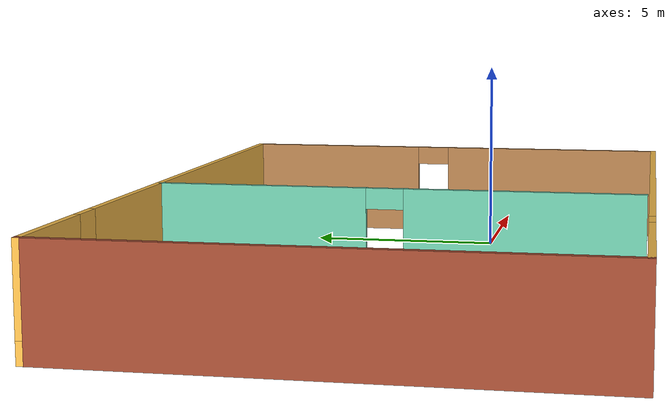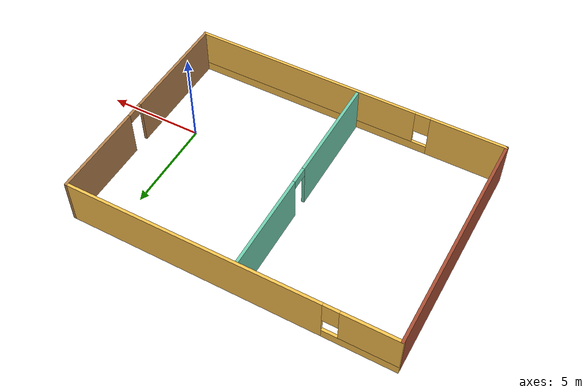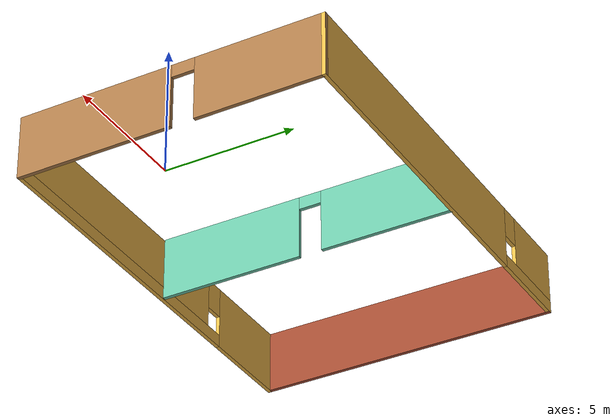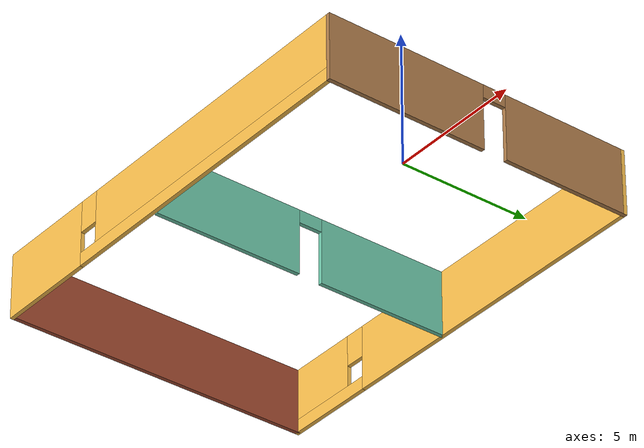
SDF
<?xml version='1.0'?>
<sdf version='1.6'>
  <model name='newbuilding'>
    <pose frame=''>-6.35109 1.40725 0 0 -0 0</pose>
    <link name='Wall_36'>
      <collision name='Wall_36_Collision'>
        <geometry>
          <box>
            <size>12 0.15 2.5</size>
          </box>
        </geometry>
        <pose frame=''>0 0 1.25 0 -0 0</pose>
      </collision>
      <visual name='Wall_36_Visual'>
        <pose frame=''>0 0 1.25 0 -0 0</pose>
        <geometry>
          <box>
            <size>12 0.15 2.5</size>
          </box>
        </geometry>
        <material>
          <script>
            <uri>file://media/materials/scripts/gazebo.material</uri>
            <name>Gazebo/Bricks</name>
          </script>
          <ambient>1 1 1 1</ambient>
        </material>
        <meta>
          <layer>0</layer>
        </meta>
      </visual>
      <pose frame=''>-8.425 0 0 0 0 -1.5708</pose>
    </link>
    <link name='Wall_37'>
      <pose frame=''>0 -5.925 0 0 -0 0</pose>
      <visual name='Wall_37_Visual_0'>
        <pose frame=''>-6.51786 0 1.25 0 -0 0</pose>
        <geometry>
          <box>
            <size>3.96427 0.15 2.5</size>
          </box>
        </geometry>
        <material>
          <script>
            <uri>file://media/materials/scripts/gazebo.material</uri>
            <name>Gazebo/Grey</name>
          </script>
          <ambient>1 0.764706 0.305882 1</ambient>
        </material>
        <meta>
          <layer>0</layer>
        </meta>
      </visual>
      <collision name='Wall_37_Collision_0'>
        <geometry>
          <box>
            <size>3.96427 0.15 2.5</size>
          </box>
        </geometry>
        <pose frame=''>-6.51786 0 1.25 0 -0 0</pose>
      </collision>
      <visual name='Wall_37_Visual_1'>
        <pose frame=''>1.98213 0 0.25 0 -0 0</pose>
        <geometry>
          <box>
            <size>13.0357 0.15 0.5</size>
          </box>
        </geometry>
        <material>
          <script>
            <uri>file://media/materials/scripts/gazebo.material</uri>
            <name>Gazebo/Grey</name>
          </script>
          <ambient>1 0.764706 0.305882 1</ambient>
        </material>
        <meta>
          <layer>0</layer>
        </meta>
      </visual>
      <collision name='Wall_37_Collision_1'>
        <geometry>
          <box>
            <size>13.0357 0.15 0.5</size>
          </box>
        </geometry>
        <pose frame=''>1.98213 0 0.25 0 -0 0</pose>
      </collision>
      <visual name='Wall_37_Visual_2'>
        <pose frame=''>2.38213 0 1.5 0 -0 0</pose>
        <geometry>
          <box>
            <size>12.2357 0.15 2</size>
          </box>
        </geometry>
        <material>
          <script>
            <uri>file://media/materials/scripts/gazebo.material</uri>
            <name>Gazebo/Grey</name>
          </script>
          <ambient>1 0.764706 0.305882 1</ambient>
        </material>
        <meta>
          <layer>0</layer>
        </meta>
      </visual>
      <collision name='Wall_37_Collision_2'>
        <geometry>
          <box>
            <size>12.2357 0.15 2</size>
          </box>
        </geometry>
        <pose frame=''>2.38213 0 1.5 0 -0 0</pose>
      </collision>
      <visual name='Wall_37_Visual_3'>
        <pose frame=''>-4.13573 0 1.9 0 -0 0</pose>
        <geometry>
          <box>
            <size>0.8 0.15 1.2</size>
          </box>
        </geometry>
        <material>
          <script>
            <uri>file://media/materials/scripts/gazebo.material</uri>
            <name>Gazebo/Grey</name>
          </script>
          <ambient>1 0.764706 0.305882 1</ambient>
        </material>
        <meta>
          <layer>0</layer>
        </meta>
      </visual>
      <collision name='Wall_37_Collision_3'>
        <geometry>
          <box>
            <size>0.8 0.15 1.2</size>
          </box>
        </geometry>
        <pose frame=''>-4.13573 0 1.9 0 -0 0</pose>
      </collision>
    </link>
    <link name='Wall_38'>
      <pose frame=''>8.425 0 0 0 -0 1.5708</pose>
      <visual name='Wall_38_Visual_0'>
        <pose frame=''>-2.94223 0 1.25 0 -0 0</pose>
        <geometry>
          <box>
            <size>6.11555 0.15 2.5</size>
          </box>
        </geometry>
        <material>
          <script>
            <uri>file://media/materials/scripts/gazebo.material</uri>
            <name>Gazebo/Wood</name>
          </script>
          <ambient>1 1 1 1</ambient>
        </material>
        <meta>
          <layer>0</layer>
        </meta>
      </visual>
      <collision name='Wall_38_Collision_0'>
        <geometry>
          <box>
            <size>6.11555 0.15 2.5</size>
          </box>
        </geometry>
        <pose frame=''>-2.94223 0 1.25 0 -0 0</pose>
      </collision>
      <visual name='Wall_38_Visual_1'>
        <pose frame=''>3.50778 0 1.25 0 -0 0</pose>
        <geometry>
          <box>
            <size>4.98445 0.15 2.5</size>
          </box>
        </geometry>
        <material>
          <script>
            <uri>file://media/materials/scripts/gazebo.material</uri>
            <name>Gazebo/Wood</name>
          </script>
          <ambient>1 1 1 1</ambient>
        </material>
        <meta>
          <layer>0</layer>
        </meta>
      </visual>
      <collision name='Wall_38_Collision_1'>
        <geometry>
          <box>
            <size>4.98445 0.15 2.5</size>
          </box>
        </geometry>
        <pose frame=''>3.50778 0 1.25 0 -0 0</pose>
      </collision>
      <visual name='Wall_38_Visual_2'>
        <pose frame=''>0.56555 0 2.25 0 -0 0</pose>
        <geometry>
          <box>
            <size>0.9 0.15 0.5</size>
          </box>
        </geometry>
        <material>
          <script>
            <uri>file://media/materials/scripts/gazebo.material</uri>
            <name>Gazebo/Wood</name>
          </script>
          <ambient>1 1 1 1</ambient>
        </material>
        <meta>
          <layer>0</layer>
        </meta>
      </visual>
      <collision name='Wall_38_Collision_2'>
        <geometry>
          <box>
            <size>0.9 0.15 0.5</size>
          </box>
        </geometry>
        <pose frame=''>0.56555 0 2.25 0 -0 0</pose>
      </collision>
    </link>
    <link name='Wall_39'>
      <pose frame=''>0 5.925 0 0 -0 3.14159</pose>
      <visual name='Wall_39_Visual_0'>
        <pose frame=''>-1.84681 0 1.25 0 -0 0</pose>
        <geometry>
          <box>
            <size>13.3064 0.15 2.5</size>
          </box>
        </geometry>
        <material>
          <script>
            <uri>file://media/materials/scripts/gazebo.material</uri>
            <name>Gazebo/Grey</name>
          </script>
          <ambient>1 0.764706 0.305882 1</ambient>
        </material>
        <meta>
          <layer>0</layer>
        </meta>
      </visual>
      <collision name='Wall_39_Collision_0'>
        <geometry>
          <box>
            <size>13.3064 0.15 2.5</size>
          </box>
        </geometry>
        <pose frame=''>-1.84681 0 1.25 0 -0 0</pose>
      </collision>
      <visual name='Wall_39_Visual_1'>
        <pose frame=''>6.65319 0 0.25 0 -0 0</pose>
        <geometry>
          <box>
            <size>3.69361 0.15 0.5</size>
          </box>
        </geometry>
        <material>
          <script>
            <uri>file://media/materials/scripts/gazebo.material</uri>
            <name>Gazebo/Grey</name>
          </script>
          <ambient>1 0.764706 0.305882 1</ambient>
        </material>
        <meta>
          <layer>0</layer>
        </meta>
      </visual>
      <collision name='Wall_39_Collision_1'>
        <geometry>
          <box>
            <size>3.69361 0.15 0.5</size>
          </box>
        </geometry>
        <pose frame=''>6.65319 0 0.25 0 -0 0</pose>
      </collision>
      <visual name='Wall_39_Visual_2'>
        <pose frame=''>7.05319 0 1.5 0 -0 0</pose>
        <geometry>
          <box>
            <size>2.89361 0.15 2</size>
          </box>
        </geometry>
        <material>
          <script>
            <uri>file://media/materials/scripts/gazebo.material</uri>
            <name>Gazebo/Grey</name>
          </script>
          <ambient>1 0.764706 0.305882 1</ambient>
        </material>
        <meta>
          <layer>0</layer>
        </meta>
      </visual>
      <collision name='Wall_39_Collision_2'>
        <geometry>
          <box>
            <size>2.89361 0.15 2</size>
          </box>
        </geometry>
        <pose frame=''>7.05319 0 1.5 0 -0 0</pose>
      </collision>
      <visual name='Wall_39_Visual_3'>
        <pose frame=''>5.20639 0 1.9 0 -0 0</pose>
        <geometry>
          <box>
            <size>0.8 0.15 1.2</size>
          </box>
        </geometry>
        <material>
          <script>
            <uri>file://media/materials/scripts/gazebo.material</uri>
            <name>Gazebo/Grey</name>
          </script>
          <ambient>1 0.764706 0.305882 1</ambient>
        </material>
        <meta>
          <layer>0</layer>
        </meta>
      </visual>
      <collision name='Wall_39_Collision_3'>
        <geometry>
          <box>
            <size>0.8 0.15 1.2</size>
          </box>
        </geometry>
        <pose frame=''>5.20639 0 1.9 0 -0 0</pose>
      </collision>
    </link>
    <link name='Wall_41'>
      <pose frame=''>-0.617853 0.05766 0 0 0 -1.5708</pose>
      <visual name='Wall_41_Visual_0'>
        <pose frame=''>-3.29408 0 1.25 0 -0 0</pose>
        <geometry>
          <box>
            <size>5.16183 0.15 2.5</size>
          </box>
        </geometry>
        <material>
          <script>
            <uri>file://media/materials/scripts/gazebo.material</uri>
            <name>Gazebo/Grey</name>
          </script>
          <ambient>0.435294 0.796078 0.67451 1</ambient>
        </material>
        <meta>
          <layer>0</layer>
        </meta>
      </visual>
      <collision name='Wall_41_Collision_0'>
        <geometry>
          <box>
            <size>5.16183 0.15 2.5</size>
          </box>
        </geometry>
        <pose frame=''>-3.29408 0 1.25 0 -0 0</pose>
      </collision>
      <visual name='Wall_41_Visual_1'>
        <pose frame=''>3.03092 0 1.25 0 -0 0</pose>
        <geometry>
          <box>
            <size>5.68817 0.15 2.5</size>
          </box>
        </geometry>
        <material>
          <script>
            <uri>file://media/materials/scripts/gazebo.material</uri>
            <name>Gazebo/Grey</name>
          </script>
          <ambient>0.435294 0.796078 0.67451 1</ambient>
        </material>
        <meta>
          <layer>0</layer>
        </meta>
      </visual>
      <collision name='Wall_41_Collision_1'>
        <geometry>
          <box>
            <size>5.68817 0.15 2.5</size>
          </box>
        </geometry>
        <pose frame=''>3.03092 0 1.25 0 -0 0</pose>
      </collision>
      <visual name='Wall_41_Visual_2'>
        <pose frame=''>-0.263169 0 2.25 0 -0 0</pose>
        <geometry>
          <box>
            <size>0.9 0.15 0.5</size>
          </box>
        </geometry>
        <material>
          <script>
            <uri>file://media/materials/scripts/gazebo.material</uri>
            <name>Gazebo/Grey</name>
          </script>
          <ambient>0.435294 0.796078 0.67451 1</ambient>
        </material>
        <meta>
          <layer>0</layer>
        </meta>
      </visual>
      <collision name='Wall_41_Collision_2'>
        <geometry>
          <box>
            <size>0.9 0.15 0.5</size>
          </box>
        </geometry>
        <pose frame=''>-0.263169 0 2.25 0 -0 0</pose>
      </collision>
    </link>
    <static>1</static>
  </model>
</sdf>
